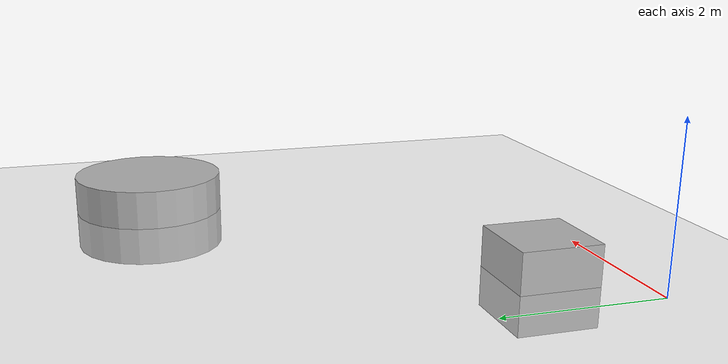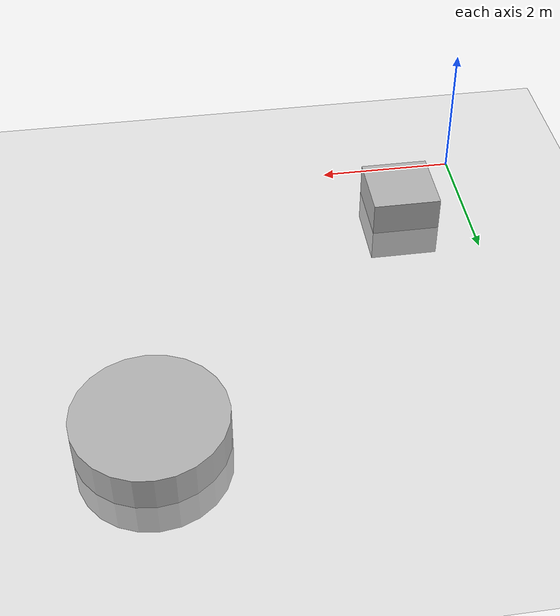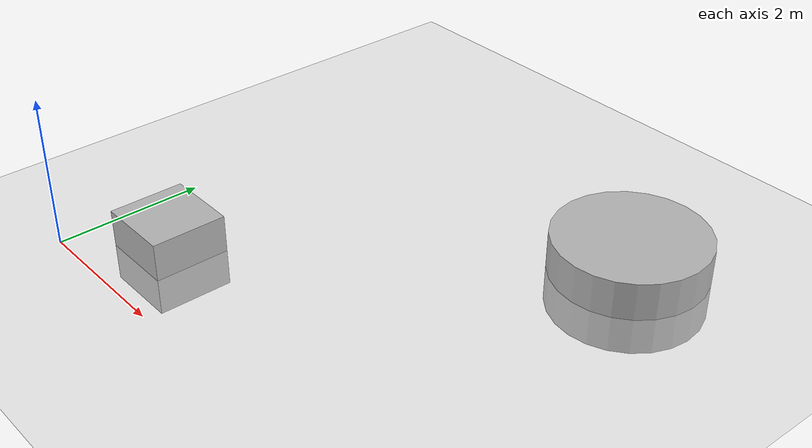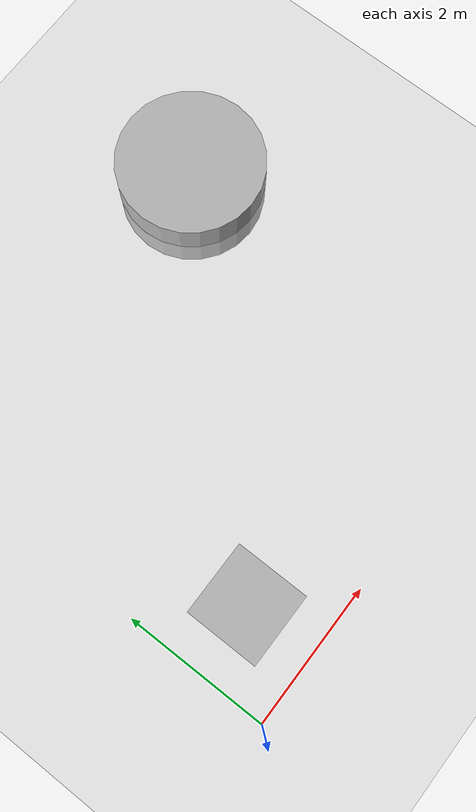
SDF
<?xml version="1.0"?>
<sdf version="1.5">
  <world name="basic_world">

    <include>
      <uri>model://ground_plane</uri>
    </include>

    <include>
      <uri>model://scenic/simulators/gazebo/models/box</uri>
      <pose>1 1 0 0 0 0</pose>
    </include>

    <include>
      <uri>model://scenic/simulators/gazebo/models/cylinder</uri>
      <pose>5 5 0 0 0 0</pose>
    </include>

  </world>
</sdf>

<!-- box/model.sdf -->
<sdf version="1.5">
  <model name="box">
    <static>true</static>
    <link name="link">
      <collision name="box_collision">
        <geometry>
          <box>
            <size>1 1 1</size>
          </box>
        </geometry>
      </collision>

      <visual name="box_visual">
        <geometry>
          <box>
            <size>1 1 1</size>
          </box>
        </geometry>
      </visual>
    </link>
  </model>
</sdf>

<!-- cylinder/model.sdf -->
<sdf version="1.5">
  <model name="cylinder">
    <static>true</static>
    <link name="link">
      <collision name="cylinder_collision">
        <geometry>
          <cylinder>
            <radius>1</radius>
            <length>1</length>
          </cylinder>
        </geometry>
      </collision>

      <visual name="cylinder_visual">
        <geometry>
          <cylinder>
            <radius>1</radius>
            <length>1</length>
          </cylinder>
        </geometry>
      </visual>
    </link>
  </model>
</sdf>
